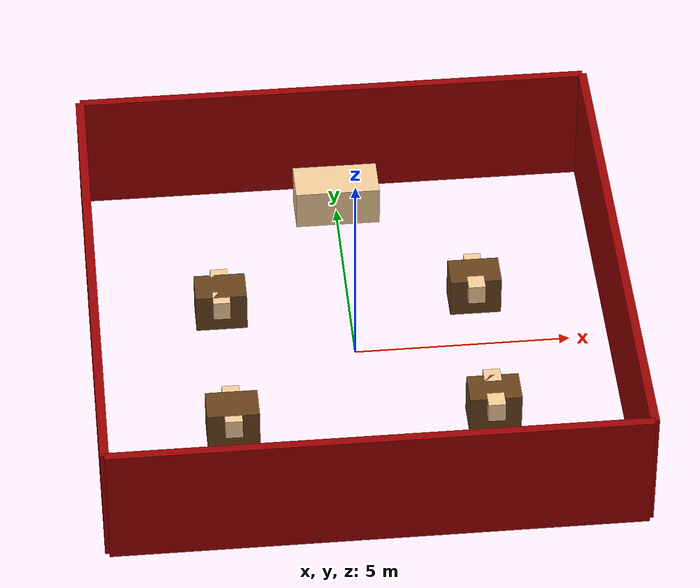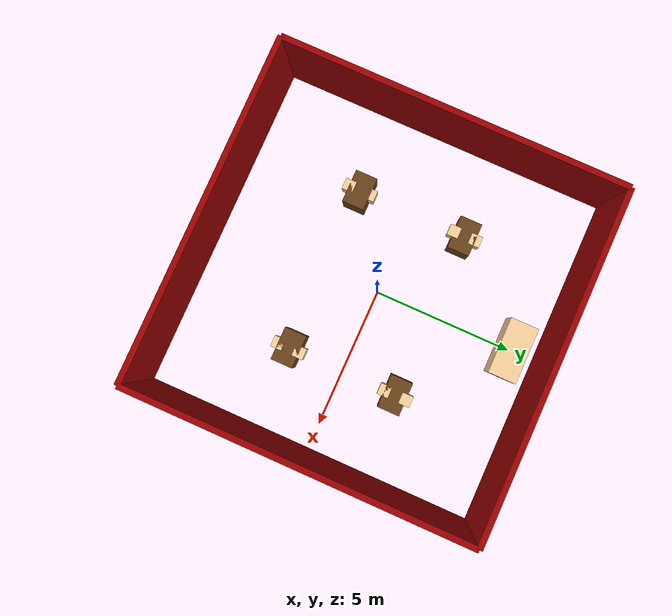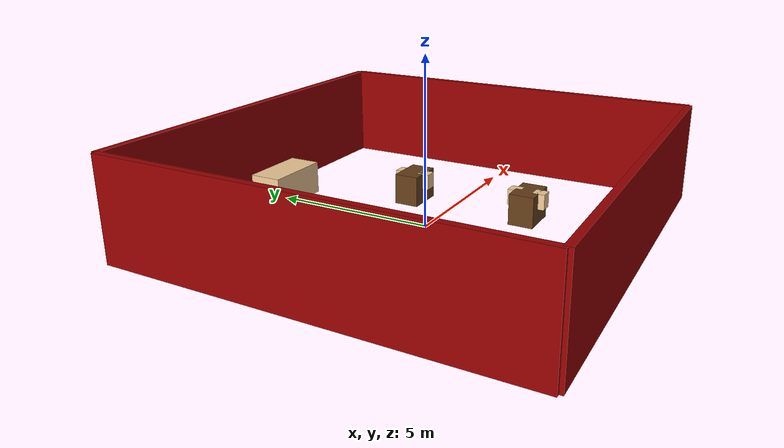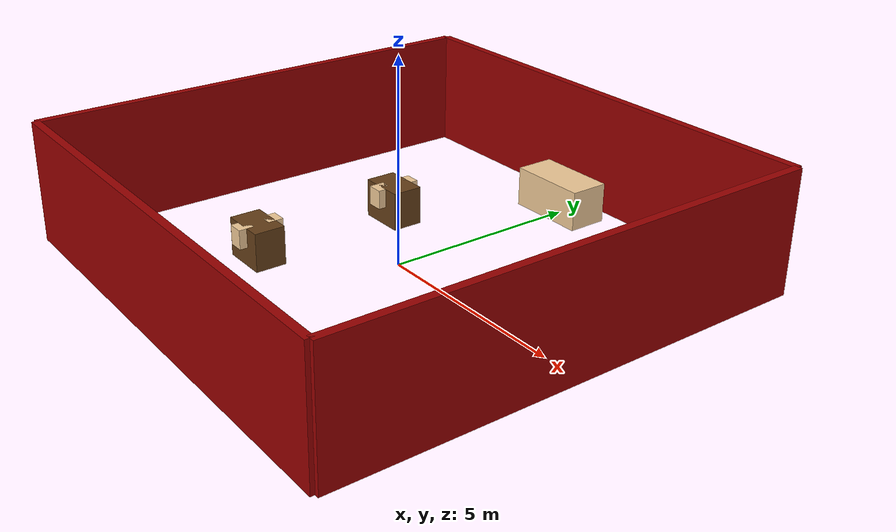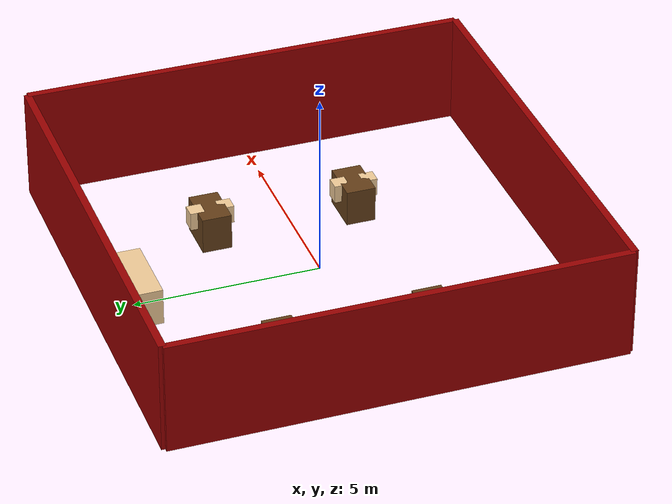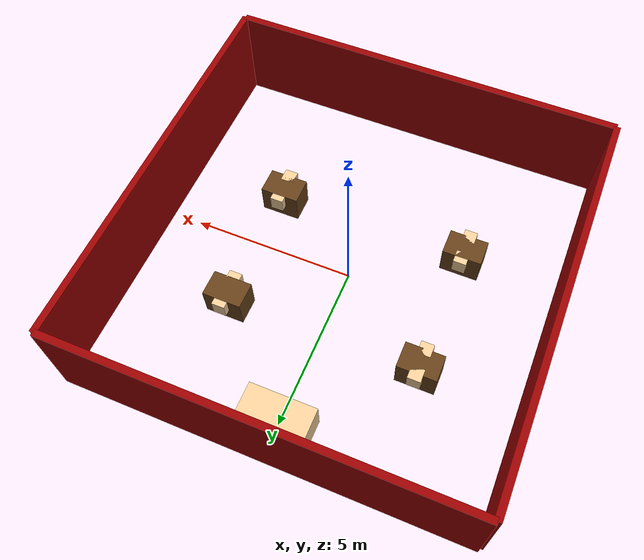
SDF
<sdf version="1.8">
 <world name="rest_world_with_robot">
  <model name="wall1">
   <static>true</static>
   <link name="link">
    <collision name="collision"><geometry><box><size>12 0.2 3</size></box></geometry></collision>
    <visual name="visual">
     <geometry><box><size>12 0.2 3</size></box></geometry>
     <material><ambient>0.6 0 0 1</ambient><diffuse>0.6 0 0 1</diffuse></material>
    </visual>
    <pose>0 6 1.5 0 0 0</pose>
   </link>
  </model>
  <model name="wall2">
   <static>true</static>
   <link name="link">
    <collision name="collision"><geometry><box><size>12 0.2 3</size></box></geometry></collision>
    <visual name="visual">
     <geometry><box><size>12 0.2 3</size></box></geometry>
     <material><ambient>0.6 0 0 1</ambient><diffuse>0.6 0 0 1</diffuse></material>
    </visual>
    <pose>0 -6 1.5 0 0 0</pose>
   </link>
  </model>
  <model name="wall3">
   <static>true</static>
   <link name="link">
    <collision name="collision"><geometry><box><size>0.2 12 3</size></box></geometry></collision>
    <visual name="visual">
     <geometry><box><size>0.2 12 3</size></box></geometry>
     <material><ambient>0.6 0 0 1</ambient><diffuse>0.6 0 0 1</diffuse></material>
    </visual>
    <pose>6 0 1.5 0 0 0</pose>
   </link>
  </model>
  <model name="wall4">
   <static>true</static>
   <link name="link">
    <collision name="collision"><geometry><box><size>0.2 12 3</size></box></geometry></collision>
    <visual name="visual">
     <geometry><box><size>0.2 12 3</size></box></geometry>
     <material><ambient>0.6 0 0 1</ambient><diffuse>0.6 0 0 1</diffuse></material>
    </visual>
    <pose>-6 0 1.5 0 0 0</pose>
   </link>
  </model>
  <model name="reception_block">
   <static>true</static>
   <link name="link">
    <collision name="collision"><geometry><box><size>2 1 1</size></box></geometry></collision>
    <visual name="visual">
     <geometry><box><size>2 1 1</size></box></geometry>
     <material><ambient>0.95 0.8 0.6 1</ambient><diffuse>0.95 0.8 0.6 1</diffuse></material>
    </visual>
    <pose>0 5 0.5 0 0 0</pose>
   </link>
  </model>
  <model name="table1">
   <static>true</static>
   <pose>-3 2 0 0 0 0</pose>
   <link name="link">
    <collision name="collision"><geometry><box><size>1.2 0.8 1</size></box></geometry></collision>
    <visual name="visual">
     <geometry><box><size>1.2 0.8 1</size></box></geometry>
     <material><ambient>0.4 0.25 0.1 1</ambient><diffuse>0.4 0.25 0.1 1</diffuse></material>
    </visual>
   </link>
  </model>
  <model name="table2">
   <static>true</static>
   <pose>3 2 0 0 0 0</pose>
   <link name="link">
    <collision name="collision"><geometry><box><size>1.2 0.8 1</size></box></geometry></collision>
    <visual name="visual">
     <geometry><box><size>1.2 0.8 1</size></box></geometry>
     <material><ambient>0.4 0.25 0.1 1</ambient><diffuse>0.4 0.25 0.1 1</diffuse></material>
    </visual>
   </link>
  </model>
  <model name="table3">
   <static>true</static>
   <pose>-3 -2 0 0 0 0</pose>
   <link name="link">
    <collision name="collision"><geometry><box><size>1.2 0.8 1</size></box></geometry></collision>
    <visual name="visual">
     <geometry><box><size>1.2 0.8 1</size></box></geometry>
     <material><ambient>0.4 0.25 0.1 1</ambient><diffuse>0.4 0.25 0.1 1</diffuse></material>
    </visual>
   </link>
  </model>
  <model name="table4">
   <static>true</static>
   <pose>3 -2 0 0 0 0</pose>
   <link name="link">
    <collision name="collision"><geometry><box><size>1.2 0.8 1</size></box></geometry></collision>
    <visual name="visual">
     <geometry><box><size>1.2 0.8 1</size></box></geometry>
     <material><ambient>0.4 0.25 0.1 1</ambient><diffuse>0.4 0.25 0.1 1</diffuse></material>
    </visual>
   </link>
  </model>
  <model name="block1_1">
   <static>true</static>
   <link name="link">
    <collision name="collision"><geometry><box><size>0.4 0.4 0.5</size></box></geometry></collision>
    <visual name="visual">
     <geometry><box><size>0.4 0.4 0.5</size></box></geometry>
     <material><ambient>0.95 0.8 0.6 1</ambient><diffuse>0.95 0.8 0.6 1</diffuse></material>
    </visual>
    <pose>-3 1.6 0.25 0 0 0</pose>
   </link>
  </model>
  <model name="block1_2">
   <static>true</static>
   <link name="link">
    <collision name="collision"><geometry><box><size>0.4 0.4 0.5</size></box></geometry></collision>
    <visual name="visual">
     <geometry><box><size>0.4 0.4 0.5</size></box></geometry>
     <material><ambient>0.95 0.8 0.6 1</ambient><diffuse>0.95 0.8 0.6 1</diffuse></material>
    </visual>
    <pose>-3 2.4 0.25 0 0 0</pose>
   </link>
  </model>
  <model name="block2_1">
   <static>true</static>
   <link name="link">
    <collision name="collision"><geometry><box><size>0.4 0.4 0.5</size></box></geometry></collision>
    <visual name="visual">
     <geometry><box><size>0.4 0.4 0.5</size></box></geometry>
     <material><ambient>0.95 0.8 0.6 1</ambient><diffuse>0.95 0.8 0.6 1</diffuse></material>
    </visual>
    <pose>3 1.6 0.25 0 0 0</pose>
   </link>
  </model>
  <model name="block2_2">
   <static>true</static>
   <link name="link">
    <collision name="collision"><geometry><box><size>0.4 0.4 0.5</size></box></geometry></collision>
    <visual name="visual">
     <geometry><box><size>0.4 0.4 0.5</size></box></geometry>
     <material><ambient>0.95 0.8 0.6 1</ambient><diffuse>0.95 0.8 0.6 1</diffuse></material>
    </visual>
    <pose>3 2.4 0.25 0 0 0</pose>
   </link>
  </model>
  <model name="block3_1">
   <static>true</static>
   <link name="link">
    <collision name="collision"><geometry><box><size>0.4 0.4 0.5</size></box></geometry></collision>
    <visual name="visual">
     <geometry><box><size>0.4 0.4 0.5</size></box></geometry>
     <material><ambient>0.95 0.8 0.6 1</ambient><diffuse>0.95 0.8 0.6 1</diffuse></material>
    </visual>
    <pose>-3 -2.4 0.25 0 0 0</pose>
   </link>
  </model>
  <model name="block3_2">
   <static>true</static>
   <link name="link">
    <collision name="collision"><geometry><box><size>0.4 0.4 0.5</size></box></geometry></collision>
    <visual name="visual">
     <geometry><box><size>0.4 0.4 0.5</size></box></geometry>
     <material><ambient>0.95 0.8 0.6 1</ambient><diffuse>0.95 0.8 0.6 1</diffuse></material>
    </visual>
    <pose>-3 -1.6 0.25 0 0 0</pose>
   </link>
  </model>
  <model name="block4_1">
   <static>true</static>
   <link name="link">
    <collision name="collision"><geometry><box><size>0.4 0.4 0.5</size></box></geometry></collision>
    <visual name="visual">
     <geometry><box><size>0.4 0.4 0.5</size></box></geometry>
     <material><ambient>0.95 0.8 0.6 1</ambient><diffuse>0.95 0.8 0.6 1</diffuse></material>
    </visual>
    <pose>3 -2.4 0.25 0 0 0</pose>
   </link>
  </model>
  <model name="block4_2">
   <static>true</static>
   <link name="link">
    <collision name="collision"><geometry><box><size>0.4 0.4 0.5</size></box></geometry></collision>
    <visual name="visual">
     <geometry><box><size>0.4 0.4 0.5</size></box></geometry>
     <material><ambient>0.95 0.8 0.6 1</ambient><diffuse>0.95 0.8 0.6 1</diffuse></material>
    </visual>
    <pose>3 -1.6 0.25 0 0 0</pose>
   </link>
  </model>
  <physics type="ode">
   <gravity>0 0 -9.81</gravity>
   <max_step_size>0.001</max_step_size>
   <real_time_update_rate>1000</real_time_update_rate>
  </physics>
 </world>
</sdf>
